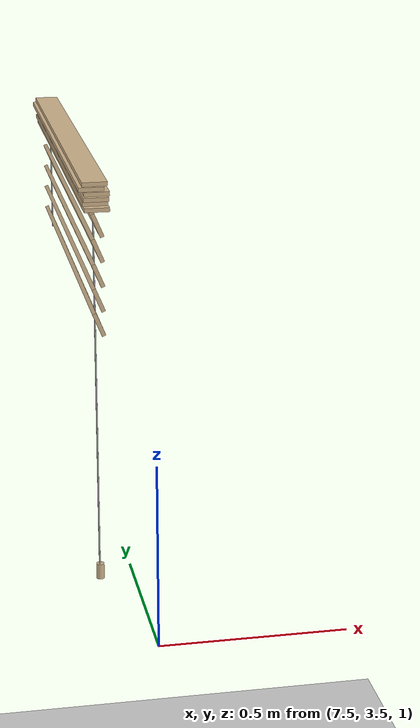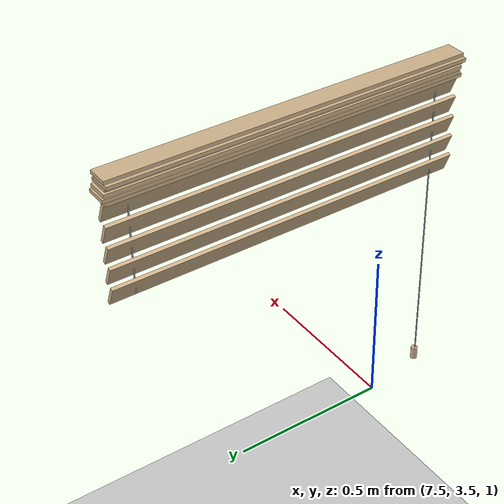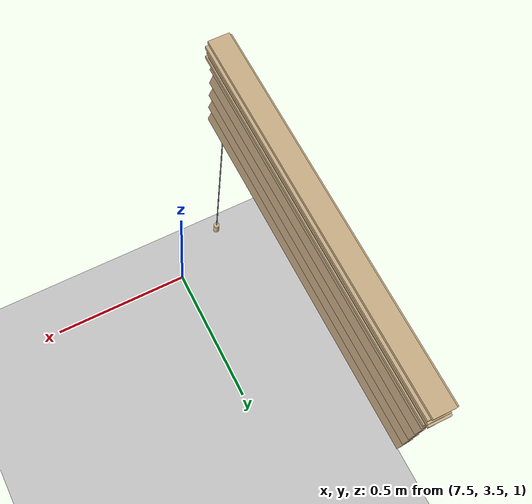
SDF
<sdf version="1.7">
 <world name="default">
  <model name="ground_plane">
   <static>1</static>
   <link name="link">
    <collision name="collision">
     <geometry><plane><normal>0 0 1</normal><size>100 100</size></plane></geometry>
     <surface>
      <contact><collide_bitmask>65535</collide_bitmask></contact>
      <friction><ode><mu>100</mu><mu2>50</mu2></ode></friction>
     </surface>
    </collision>
    <visual name="visual">
     <cast_shadows>0</cast_shadows>
     <geometry><plane><normal>0 0 1</normal><size>100 100</size></plane></geometry>
     <material>
      <script><uri>file://media/materials/scripts/gazebo.material</uri><name>Gazebo/Grey</name></script>
     </material>
    </visual>
   </link>
  </model>
  <model name="my_blinds">
   <link name="link">
    <inertial>
     <mass>1</mass>
     <inertia>
      <ixx>0.166667</ixx>
      <ixy>0</ixy>
      <ixz>0</ixz>
      <iyy>0.166667</iyy>
      <iyz>0</iyz>
      <izz>0.166667</izz>
     </inertia>
    </inertial>
    <pose>0.455071 0.017039 0 0 -0 0</pose>
    <visual name="visual">
     <geometry><box><size>0.01 1.05 0.06</size></box></geometry>
     <material>
      <script><name>Gazebo/Grey</name><uri>file://media/materials/scripts/gazebo.material</uri></script>
      <shader type="pixel"><normal_map>__default__</normal_map></shader>
      <ambient>0.82 0.71 0.55 1</ambient>
      <diffuse>0.82 0.71 0.55 1</diffuse>
      <specular>0.01 0.01 0.01 1</specular>
      <emissive>0 0 0 1</emissive>
     </material>
     <pose>0 0 2.187 3.14159 1.57079 3.14159</pose>
    </visual>
    <collision name="collision">
     <pose>0 0 2.187 3.14159 1.57079 3.14159</pose>
     <geometry><box><size>0.01 1.05 0.06</size></box></geometry>
     <surface>
      <friction>
       <ode><mu>1</mu><mu2>1</mu2><fdir1>0 0 0</fdir1><slip1>0</slip1><slip2>0</slip2></ode>
       <torsional>
        <coefficient>1</coefficient>
        <patch_radius>0</patch_radius>
        <surface_radius>0</surface_radius>
        <use_patch_radius>1</use_patch_radius>
        <ode><slip>0</slip></ode>
       </torsional>
      </friction>
      <bounce><restitution_coefficient>0</restitution_coefficient><threshold>1e+06</threshold></bounce>
      <contact>
       <collide_without_contact>0</collide_without_contact>
       <collide_without_contact_bitmask>1</collide_without_contact_bitmask>
       <collide_bitmask>1</collide_bitmask>
       <ode>
        <soft_cfm>0</soft_cfm>
        <soft_erp>0.2</soft_erp>
        <kp>1e+13</kp>
        <kd>1</kd>
        <max_vel>0.01</max_vel>
        <min_depth>0</min_depth>
       </ode>
       <bullet>
        <split_impulse>1</split_impulse>
        <split_impulse_penetration_threshold>-0.01</split_impulse_penetration_threshold>
        <soft_cfm>0</soft_cfm>
        <soft_erp>0.2</soft_erp>
        <kp>1e+13</kp>
        <kd>1</kd>
       </bullet>
      </contact>
     </surface>
    </collision>
   </link>
   <link name="left_rope">
    <inertial>
     <mass>1</mass>
     <inertia><ixx>0.145833</ixx><ixy>0</ixy><ixz>0</ixz><iyy>0.145833</iyy><iyz>0</iyz><izz>0.125</izz></inertia>
    </inertial>
    <pose>0.452907 0.474129 0.827292 0 -0 0</pose>
    <visual name="visual">
     <pose>0 0 1.24 0 -0 0</pose>
     <geometry><cylinder><radius>0.002</radius><length>0.345</length></cylinder></geometry>
     <material>
      <lighting>1</lighting>
      <script><uri>file://media/materials/scripts/gazebo.material</uri><name>Gazebo/Grey</name></script>
      <shader type="pixel"><normal_map>__default__</normal_map></shader>
      <ambient>1 1 1 1</ambient>
      <diffuse>0.8 0.8 0.8 1</diffuse>
      <specular>0.01 0.01 0.01 1</specular>
      <emissive>0 0 0 1</emissive>
     </material>
    </visual>
    <collision name="collision">
     <pose>0 0 1.24 0 -0 0</pose>
     <geometry><cylinder><radius>0.002</radius><length>0.345</length></cylinder></geometry>
     <surface>
      <friction>
       <ode><mu>1</mu><mu2>1</mu2><fdir1>0 0 0</fdir1><slip1>0</slip1><slip2>0</slip2></ode>
       <torsional>
        <coefficient>1</coefficient>
        <patch_radius>0</patch_radius>
        <surface_radius>0</surface_radius>
        <use_patch_radius>1</use_patch_radius>
        <ode><slip>0</slip></ode>
       </torsional>
      </friction>
      <bounce><restitution_coefficient>0</restitution_coefficient><threshold>1e+06</threshold></bounce>
      <contact>
       <collide_without_contact>0</collide_without_contact>
       <collide_without_contact_bitmask>1</collide_without_contact_bitmask>
       <collide_bitmask>1</collide_bitmask>
       <ode>
        <soft_cfm>0</soft_cfm>
        <soft_erp>0.2</soft_erp>
        <kp>1e+13</kp>
        <kd>1</kd>
        <max_vel>0.01</max_vel>
        <min_depth>0</min_depth>
       </ode>
       <bullet>
        <split_impulse>1</split_impulse>
        <split_impulse_penetration_threshold>-0.01</split_impulse_penetration_threshold>
        <soft_cfm>0</soft_cfm>
        <soft_erp>0.2</soft_erp>
        <kp>1e+13</kp>
        <kd>1</kd>
       </bullet>
      </contact>
     </surface>
    </collision>
   </link>
   <link name="link_1">
    <inertial>
     <mass>1</mass>
     <inertia>
      <ixx>0.166667</ixx>
      <ixy>0</ixy>
      <ixz>0</ixz>
      <iyy>0.166667</iyy>
      <iyz>0</iyz>
      <izz>0.166667</izz>
     </inertia>
    </inertial>
    <pose>0.455071 0.017039 0 0 -0 0</pose>
    <visual name="visual">
     <geometry><box><size>0.01 1.05 0.06</size></box></geometry>
     <material>
      <script><name>Gazebo/Grey</name><uri>file://media/materials/scripts/gazebo.material</uri></script>
      <shader type="pixel"><normal_map>__default__</normal_map></shader>
      <ambient>0.82 0.71 0.55 1</ambient>
      <diffuse>0.82 0.71 0.55 1</diffuse>
      <specular>0.01 0.01 0.01 1</specular>
      <emissive>0 0 0 1</emissive>
     </material>
     <pose>0 0 2.15 0 -0.39 0</pose>
    </visual>
    <collision name="collision">
     <pose>0 0 2.15 0 -0.39 0</pose>
     <geometry><box><size>0.01 1.05 0.06</size></box></geometry>
     <surface>
      <friction>
       <ode><mu>1</mu><mu2>1</mu2><fdir1>0 0 0</fdir1><slip1>0</slip1><slip2>0</slip2></ode>
       <torsional>
        <coefficient>1</coefficient>
        <patch_radius>0</patch_radius>
        <surface_radius>0</surface_radius>
        <use_patch_radius>1</use_patch_radius>
        <ode><slip>0</slip></ode>
       </torsional>
      </friction>
      <bounce><restitution_coefficient>0</restitution_coefficient><threshold>1e+06</threshold></bounce>
      <contact>
       <collide_without_contact>0</collide_without_contact>
       <collide_without_contact_bitmask>1</collide_without_contact_bitmask>
       <collide_bitmask>1</collide_bitmask>
       <ode>
        <soft_cfm>0</soft_cfm>
        <soft_erp>0.2</soft_erp>
        <kp>1e+13</kp>
        <kd>1</kd>
        <max_vel>0.01</max_vel>
        <min_depth>0</min_depth>
       </ode>
       <bullet>
        <split_impulse>1</split_impulse>
        <split_impulse_penetration_threshold>-0.01</split_impulse_penetration_threshold>
        <soft_cfm>0</soft_cfm>
        <soft_erp>0.2</soft_erp>
        <kp>1e+13</kp>
        <kd>1</kd>
       </bullet>
      </contact>
     </surface>
    </collision>
   </link>
   <link name="link_1_0">
    <inertial>
     <mass>1</mass>
     <inertia><ixx>0.145833</ixx><ixy>0</ixy><ixz>0</ixz><iyy>0.145833</iyy><iyz>0</iyz><izz>0.125</izz></inertia>
    </inertial>
    <pose>0.454407 -0.443789 1.24533 0 -0 0</pose>
    <visual name="visual">
     <geometry><cylinder><radius>0.01</radius><length>0.04</length></cylinder></geometry>
     <material>
      <lighting>1</lighting>
      <script><uri>file://media/materials/scripts/gazebo.material</uri><name>Gazebo/Grey</name></script>
      <shader type="pixel"><normal_map>__default__</normal_map></shader>
      <ambient>0.82 0.71 0.55 1</ambient>
      <diffuse>0.82 0.71 0.55 1</diffuse>
      <specular>0.01 0.01 0.01 1</specular>
      <emissive>0 0 0 1</emissive>
     </material>
    </visual>
    <collision name="collision">
     <geometry><cylinder><radius>0.01</radius><length>0.04</length></cylinder></geometry>
     <surface>
      <friction>
       <ode><mu>1</mu><mu2>1</mu2><fdir1>0 0 0</fdir1><slip1>0</slip1><slip2>0</slip2></ode>
       <torsional>
        <coefficient>1</coefficient>
        <patch_radius>0</patch_radius>
        <surface_radius>0</surface_radius>
        <use_patch_radius>1</use_patch_radius>
        <ode><slip>0</slip></ode>
       </torsional>
      </friction>
      <bounce><restitution_coefficient>0</restitution_coefficient><threshold>1e+06</threshold></bounce>
      <contact>
       <collide_without_contact>0</collide_without_contact>
       <collide_without_contact_bitmask>1</collide_without_contact_bitmask>
       <collide_bitmask>1</collide_bitmask>
       <ode>
        <soft_cfm>0</soft_cfm>
        <soft_erp>0.2</soft_erp>
        <kp>1e+13</kp>
        <kd>1</kd>
        <max_vel>0.01</max_vel>
        <min_depth>0</min_depth>
       </ode>
       <bullet>
        <split_impulse>1</split_impulse>
        <split_impulse_penetration_threshold>-0.01</split_impulse_penetration_threshold>
        <soft_cfm>0</soft_cfm>
        <soft_erp>0.2</soft_erp>
        <kp>1e+13</kp>
        <kd>1</kd>
       </bullet>
      </contact>
     </surface>
    </collision>
   </link>
   <link name="link_2">
    <inertial>
     <mass>1</mass>
     <inertia>
      <ixx>0.166667</ixx>
      <ixy>0</ixy>
      <ixz>0</ixz>
      <iyy>0.166667</iyy>
      <iyz>0</iyz>
      <izz>0.166667</izz>
     </inertia>
    </inertial>
    <pose>0.455071 0.017039 0 0 -0 0</pose>
    <visual name="visual">
     <geometry><box><size>0.01 1.05 0.06</size></box></geometry>
     <material>
      <script><name>Gazebo/Grey</name><uri>file://media/materials/scripts/gazebo.material</uri></script>
      <shader type="pixel"><normal_map>__default__</normal_map></shader>
      <ambient>0.82 0.71 0.55 1</ambient>
      <diffuse>0.82 0.71 0.55 1</diffuse>
      <specular>0.01 0.01 0.01 1</specular>
      <emissive>0 0 0 1</emissive>
     </material>
     <pose>0 0 2.09 0 -0.39 0</pose>
    </visual>
    <collision name="collision">
     <pose>0 0 2.09 0 -0.39 0</pose>
     <geometry><box><size>0.01 1.05 0.06</size></box></geometry>
     <surface>
      <friction>
       <ode><mu>1</mu><mu2>1</mu2><fdir1>0 0 0</fdir1><slip1>0</slip1><slip2>0</slip2></ode>
       <torsional>
        <coefficient>1</coefficient>
        <patch_radius>0</patch_radius>
        <surface_radius>0</surface_radius>
        <use_patch_radius>1</use_patch_radius>
        <ode><slip>0</slip></ode>
       </torsional>
      </friction>
      <bounce><restitution_coefficient>0</restitution_coefficient><threshold>1e+06</threshold></bounce>
      <contact>
       <collide_without_contact>0</collide_without_contact>
       <collide_without_contact_bitmask>1</collide_without_contact_bitmask>
       <collide_bitmask>1</collide_bitmask>
       <ode>
        <soft_cfm>0</soft_cfm>
        <soft_erp>0.2</soft_erp>
        <kp>1e+13</kp>
        <kd>1</kd>
        <max_vel>0.01</max_vel>
        <min_depth>0</min_depth>
       </ode>
       <bullet>
        <split_impulse>1</split_impulse>
        <split_impulse_penetration_threshold>-0.01</split_impulse_penetration_threshold>
        <soft_cfm>0</soft_cfm>
        <soft_erp>0.2</soft_erp>
        <kp>1e+13</kp>
        <kd>1</kd>
       </bullet>
      </contact>
     </surface>
    </collision>
   </link>
   <link name="link_3">
    <inertial>
     <mass>1</mass>
     <inertia>
      <ixx>0.166667</ixx>
      <ixy>0</ixy>
      <ixz>0</ixz>
      <iyy>0.166667</iyy>
      <iyz>0</iyz>
      <izz>0.166667</izz>
     </inertia>
    </inertial>
    <pose>0.455071 0.017039 0 0 -0 0</pose>
    <visual name="visual">
     <geometry><box><size>0.01 1.05 0.06</size></box></geometry>
     <material>
      <script><name>Gazebo/Grey</name><uri>file://media/materials/scripts/gazebo.material</uri></script>
      <shader type="pixel"><normal_map>__default__</normal_map></shader>
      <ambient>0.82 0.71 0.55 1</ambient>
      <diffuse>0.82 0.71 0.55 1</diffuse>
      <specular>0.01 0.01 0.01 1</specular>
      <emissive>0 0 0 1</emissive>
     </material>
     <pose>0 0 2.03 0 -0.39 0</pose>
    </visual>
    <collision name="collision">
     <pose>0 0 2.03 0 -0.39 0</pose>
     <geometry><box><size>0.01 1.05 0.06</size></box></geometry>
     <surface>
      <friction>
       <ode><mu>1</mu><mu2>1</mu2><fdir1>0 0 0</fdir1><slip1>0</slip1><slip2>0</slip2></ode>
       <torsional>
        <coefficient>1</coefficient>
        <patch_radius>0</patch_radius>
        <surface_radius>0</surface_radius>
        <use_patch_radius>1</use_patch_radius>
        <ode><slip>0</slip></ode>
       </torsional>
      </friction>
      <bounce><restitution_coefficient>0</restitution_coefficient><threshold>1e+06</threshold></bounce>
      <contact>
       <collide_without_contact>0</collide_without_contact>
       <collide_without_contact_bitmask>1</collide_without_contact_bitmask>
       <collide_bitmask>1</collide_bitmask>
       <ode>
        <soft_cfm>0</soft_cfm>
        <soft_erp>0.2</soft_erp>
        <kp>1e+13</kp>
        <kd>1</kd>
        <max_vel>0.01</max_vel>
        <min_depth>0</min_depth>
       </ode>
       <bullet>
        <split_impulse>1</split_impulse>
        <split_impulse_penetration_threshold>-0.01</split_impulse_penetration_threshold>
        <soft_cfm>0</soft_cfm>
        <soft_erp>0.2</soft_erp>
        <kp>1e+13</kp>
        <kd>1</kd>
       </bullet>
      </contact>
     </surface>
    </collision>
   </link>
   <link name="link_4">
    <inertial>
     <mass>1</mass>
     <inertia>
      <ixx>0.166667</ixx>
      <ixy>0</ixy>
      <ixz>0</ixz>
      <iyy>0.166667</iyy>
      <iyz>0</iyz>
      <izz>0.166667</izz>
     </inertia>
    </inertial>
    <pose>0.455071 0.017039 0 0 -0 0</pose>
    <visual name="visual">
     <geometry><box><size>0.01 1.05 0.06</size></box></geometry>
     <material>
      <script><name>Gazebo/Grey</name><uri>file://media/materials/scripts/gazebo.material</uri></script>
      <shader type="pixel"><normal_map>__default__</normal_map></shader>
      <ambient>0.82 0.71 0.55 1</ambient>
      <diffuse>0.82 0.71 0.55 1</diffuse>
      <specular>0.01 0.01 0.01 1</specular>
      <emissive>0 0 0 1</emissive>
     </material>
     <pose>0 0 1.97 0 -0.39 0</pose>
    </visual>
    <collision name="collision">
     <pose>0 0 1.97 0 -0.39 0</pose>
     <geometry><box><size>0.01 1.05 0.06</size></box></geometry>
     <surface>
      <friction>
       <ode><mu>1</mu><mu2>1</mu2><fdir1>0 0 0</fdir1><slip1>0</slip1><slip2>0</slip2></ode>
       <torsional>
        <coefficient>1</coefficient>
        <patch_radius>0</patch_radius>
        <surface_radius>0</surface_radius>
        <use_patch_radius>1</use_patch_radius>
        <ode><slip>0</slip></ode>
       </torsional>
      </friction>
      <bounce><restitution_coefficient>0</restitution_coefficient><threshold>1e+06</threshold></bounce>
      <contact>
       <collide_without_contact>0</collide_without_contact>
       <collide_without_contact_bitmask>1</collide_without_contact_bitmask>
       <collide_bitmask>1</collide_bitmask>
       <ode>
        <soft_cfm>0</soft_cfm>
        <soft_erp>0.2</soft_erp>
        <kp>1e+13</kp>
        <kd>1</kd>
        <max_vel>0.01</max_vel>
        <min_depth>0</min_depth>
       </ode>
       <bullet>
        <split_impulse>1</split_impulse>
        <split_impulse_penetration_threshold>-0.01</split_impulse_penetration_threshold>
        <soft_cfm>0</soft_cfm>
        <soft_erp>0.2</soft_erp>
        <kp>1e+13</kp>
        <kd>1</kd>
       </bullet>
      </contact>
     </surface>
    </collision>
   </link>
   <link name="link_5">
    <inertial>
     <mass>1</mass>
     <inertia>
      <ixx>0.166667</ixx>
      <ixy>0</ixy>
      <ixz>0</ixz>
      <iyy>0.166667</iyy>
      <iyz>0</iyz>
      <izz>0.166667</izz>
     </inertia>
    </inertial>
    <pose>0.455071 0.017039 0 0 -0 0</pose>
    <visual name="visual">
     <geometry><box><size>0.01 1.05 0.06</size></box></geometry>
     <material>
      <script><name>Gazebo/Grey</name><uri>file://media/materials/scripts/gazebo.material</uri></script>
      <shader type="pixel"><normal_map>__default__</normal_map></shader>
      <ambient>0.82 0.71 0.55 1</ambient>
      <diffuse>0.82 0.71 0.55 1</diffuse>
      <specular>0.01 0.01 0.01 1</specular>
      <emissive>0 0 0 1</emissive>
     </material>
     <pose>0 0 1.91 0 -0.39 0</pose>
    </visual>
    <collision name="collision">
     <pose>0 0 1.91 0 -0.39 0</pose>
     <geometry><box><size>0.01 1.05 0.06</size></box></geometry>
     <surface>
      <friction>
       <ode><mu>1</mu><mu2>1</mu2><fdir1>0 0 0</fdir1><slip1>0</slip1><slip2>0</slip2></ode>
       <torsional>
        <coefficient>1</coefficient>
        <patch_radius>0</patch_radius>
        <surface_radius>0</surface_radius>
        <use_patch_radius>1</use_patch_radius>
        <ode><slip>0</slip></ode>
       </torsional>
      </friction>
      <bounce><restitution_coefficient>0</restitution_coefficient><threshold>1e+06</threshold></bounce>
      <contact>
       <collide_without_contact>0</collide_without_contact>
       <collide_without_contact_bitmask>1</collide_without_contact_bitmask>
       <collide_bitmask>1</collide_bitmask>
       <ode>
        <soft_cfm>0</soft_cfm>
        <soft_erp>0.2</soft_erp>
        <kp>1e+13</kp>
        <kd>1</kd>
        <max_vel>0.01</max_vel>
        <min_depth>0</min_depth>
       </ode>
       <bullet>
        <split_impulse>1</split_impulse>
        <split_impulse_penetration_threshold>-0.01</split_impulse_penetration_threshold>
        <soft_cfm>0</soft_cfm>
        <soft_erp>0.2</soft_erp>
        <kp>1e+13</kp>
        <kd>1</kd>
       </bullet>
      </contact>
     </surface>
    </collision>
   </link>
   <link name="link_clone">
    <inertial>
     <mass>1</mass>
     <inertia>
      <ixx>0.166667</ixx>
      <ixy>0</ixy>
      <ixz>0</ixz>
      <iyy>0.166667</iyy>
      <iyz>0</iyz>
      <izz>0.166667</izz>
     </inertia>
    </inertial>
    <pose>0.452148 0.026043 0.012868 0 -0 0</pose>
    <visual name="visual">
     <geometry><box><size>0.01 1.05 0.06</size></box></geometry>
     <material>
      <script><name>Gazebo/Grey</name><uri>file://media/materials/scripts/gazebo.material</uri></script>
      <shader type="pixel"><normal_map>__default__</normal_map></shader>
      <ambient>0.82 0.71 0.55 1</ambient>
      <diffuse>0.82 0.71 0.55 1</diffuse>
      <specular>0.01 0.01 0.01 1</specular>
      <emissive>0 0 0 1</emissive>
     </material>
     <pose>0 0 2.187 3.14159 1.57079 3.14159</pose>
    </visual>
    <collision name="collision">
     <pose>0 0 2.187 3.14159 1.57079 3.14159</pose>
     <geometry><box><size>0.01 1.05 0.06</size></box></geometry>
     <surface>
      <friction>
       <ode><mu>1</mu><mu2>1</mu2><fdir1>0 0 0</fdir1><slip1>0</slip1><slip2>0</slip2></ode>
       <torsional>
        <coefficient>1</coefficient>
        <patch_radius>0</patch_radius>
        <surface_radius>0</surface_radius>
        <use_patch_radius>1</use_patch_radius>
        <ode><slip>0</slip></ode>
       </torsional>
      </friction>
      <bounce><restitution_coefficient>0</restitution_coefficient><threshold>1e+06</threshold></bounce>
      <contact>
       <collide_without_contact>0</collide_without_contact>
       <collide_without_contact_bitmask>1</collide_without_contact_bitmask>
       <collide_bitmask>1</collide_bitmask>
       <ode>
        <soft_cfm>0</soft_cfm>
        <soft_erp>0.2</soft_erp>
        <kp>1e+13</kp>
        <kd>1</kd>
        <max_vel>0.01</max_vel>
        <min_depth>0</min_depth>
       </ode>
       <bullet>
        <split_impulse>1</split_impulse>
        <split_impulse_penetration_threshold>-0.01</split_impulse_penetration_threshold>
        <soft_cfm>0</soft_cfm>
        <soft_erp>0.2</soft_erp>
        <kp>1e+13</kp>
        <kd>1</kd>
       </bullet>
      </contact>
     </surface>
    </collision>
   </link>
   <link name="link_clone_clone">
    <inertial>
     <mass>1</mass>
     <inertia>
      <ixx>0.166667</ixx>
      <ixy>0</ixy>
      <ixz>0</ixz>
      <iyy>0.166667</iyy>
      <iyz>0</iyz>
      <izz>0.166667</izz>
     </inertia>
    </inertial>
    <pose>0.454154 0.020509 0.023586 0 -0 0</pose>
    <visual name="visual">
     <geometry><box><size>0.01 1.05 0.06</size></box></geometry>
     <material>
      <script><name>Gazebo/Grey</name><uri>file://media/materials/scripts/gazebo.material</uri></script>
      <shader type="pixel"><normal_map>__default__</normal_map></shader>
      <ambient>0.82 0.71 0.55 1</ambient>
      <diffuse>0.82 0.71 0.55 1</diffuse>
      <specular>0.01 0.01 0.01 1</specular>
      <emissive>0 0 0 1</emissive>
     </material>
     <pose>0 0 2.187 3.14159 1.57079 3.14159</pose>
    </visual>
    <collision name="collision">
     <pose>0 0 2.187 3.14159 1.57079 3.14159</pose>
     <geometry><box><size>0.01 1.05 0.06</size></box></geometry>
     <surface>
      <friction>
       <ode><mu>1</mu><mu2>1</mu2><fdir1>0 0 0</fdir1><slip1>0</slip1><slip2>0</slip2></ode>
       <torsional>
        <coefficient>1</coefficient>
        <patch_radius>0</patch_radius>
        <surface_radius>0</surface_radius>
        <use_patch_radius>1</use_patch_radius>
        <ode><slip>0</slip></ode>
       </torsional>
      </friction>
      <bounce><restitution_coefficient>0</restitution_coefficient><threshold>1e+06</threshold></bounce>
      <contact>
       <collide_without_contact>0</collide_without_contact>
       <collide_without_contact_bitmask>1</collide_without_contact_bitmask>
       <collide_bitmask>1</collide_bitmask>
       <ode>
        <soft_cfm>0</soft_cfm>
        <soft_erp>0.2</soft_erp>
        <kp>1e+13</kp>
        <kd>1</kd>
        <max_vel>0.01</max_vel>
        <min_depth>0</min_depth>
       </ode>
       <bullet>
        <split_impulse>1</split_impulse>
        <split_impulse_penetration_threshold>-0.01</split_impulse_penetration_threshold>
        <soft_cfm>0</soft_cfm>
        <soft_erp>0.2</soft_erp>
        <kp>1e+13</kp>
        <kd>1</kd>
       </bullet>
      </contact>
     </surface>
    </collision>
   </link>
   <link name="link_clone_clone_clone">
    <inertial>
     <mass>1</mass>
     <inertia>
      <ixx>0.166667</ixx>
      <ixy>0</ixy>
      <ixz>0</ixz>
      <iyy>0.166667</iyy>
      <iyz>0</iyz>
      <izz>0.166667</izz>
     </inertia>
    </inertial>
    <pose>0.455421 0.015468 0.038005 0 -0 0</pose>
    <visual name="visual">
     <geometry><box><size>0.01 1.05 0.06</size></box></geometry>
     <material>
      <script><name>Gazebo/Grey</name><uri>file://media/materials/scripts/gazebo.material</uri></script>
      <shader type="pixel"><normal_map>__default__</normal_map></shader>
      <ambient>0.82 0.71 0.55 1</ambient>
      <diffuse>0.82 0.71 0.55 1</diffuse>
      <specular>0.01 0.01 0.01 1</specular>
      <emissive>0 0 0 1</emissive>
     </material>
     <pose>0 0 2.187 3.14159 1.57079 3.14159</pose>
    </visual>
    <collision name="collision">
     <pose>0 0 2.187 3.14159 1.57079 3.14159</pose>
     <geometry><box><size>0.01 1.05 0.06</size></box></geometry>
     <surface>
      <friction>
       <ode><mu>1</mu><mu2>1</mu2><fdir1>0 0 0</fdir1><slip1>0</slip1><slip2>0</slip2></ode>
       <torsional>
        <coefficient>1</coefficient>
        <patch_radius>0</patch_radius>
        <surface_radius>0</surface_radius>
        <use_patch_radius>1</use_patch_radius>
        <ode><slip>0</slip></ode>
       </torsional>
      </friction>
      <bounce><restitution_coefficient>0</restitution_coefficient><threshold>1e+06</threshold></bounce>
      <contact>
       <collide_without_contact>0</collide_without_contact>
       <collide_without_contact_bitmask>1</collide_without_contact_bitmask>
       <collide_bitmask>1</collide_bitmask>
       <ode>
        <soft_cfm>0</soft_cfm>
        <soft_erp>0.2</soft_erp>
        <kp>1e+13</kp>
        <kd>1</kd>
        <max_vel>0.01</max_vel>
        <min_depth>0</min_depth>
       </ode>
       <bullet>
        <split_impulse>1</split_impulse>
        <split_impulse_penetration_threshold>-0.01</split_impulse_penetration_threshold>
        <soft_cfm>0</soft_cfm>
        <soft_erp>0.2</soft_erp>
        <kp>1e+13</kp>
        <kd>1</kd>
       </bullet>
      </contact>
     </surface>
    </collision>
   </link>
   <link name="link_clone_clone_clone_clone">
    <inertial>
     <mass>1</mass>
     <inertia>
      <ixx>0.166667</ixx>
      <ixy>0</ixy>
      <ixz>0</ixz>
      <iyy>0.166667</iyy>
      <iyz>0</iyz>
      <izz>0.166667</izz>
     </inertia>
    </inertial>
    <pose>0.442992 0.017715 0.049194 0 -0 0</pose>
    <visual name="visual">
     <geometry><box><size>0.01 1.05 0.06</size></box></geometry>
     <material>
      <script><name>Gazebo/Grey</name><uri>file://media/materials/scripts/gazebo.material</uri></script>
      <shader type="pixel"><normal_map>__default__</normal_map></shader>
      <ambient>0.82 0.71 0.55 1</ambient>
      <diffuse>0.82 0.71 0.55 1</diffuse>
      <specular>0.01 0.01 0.01 1</specular>
      <emissive>0 0 0 1</emissive>
     </material>
     <pose>0 0 2.187 3.14159 1.57079 3.14159</pose>
    </visual>
    <collision name="collision">
     <pose>0 0 2.187 3.14159 1.57079 3.14159</pose>
     <geometry><box><size>0.01 1.05 0.06</size></box></geometry>
     <surface>
      <friction>
       <ode><mu>1</mu><mu2>1</mu2><fdir1>0 0 0</fdir1><slip1>0</slip1><slip2>0</slip2></ode>
       <torsional>
        <coefficient>1</coefficient>
        <patch_radius>0</patch_radius>
        <surface_radius>0</surface_radius>
        <use_patch_radius>1</use_patch_radius>
        <ode><slip>0</slip></ode>
       </torsional>
      </friction>
      <bounce><restitution_coefficient>0</restitution_coefficient><threshold>1e+06</threshold></bounce>
      <contact>
       <collide_without_contact>0</collide_without_contact>
       <collide_without_contact_bitmask>1</collide_without_contact_bitmask>
       <collide_bitmask>1</collide_bitmask>
       <ode>
        <soft_cfm>0</soft_cfm>
        <soft_erp>0.2</soft_erp>
        <kp>1e+13</kp>
        <kd>1</kd>
        <max_vel>0.01</max_vel>
        <min_depth>0</min_depth>
       </ode>
       <bullet>
        <split_impulse>1</split_impulse>
        <split_impulse_penetration_threshold>-0.01</split_impulse_penetration_threshold>
        <soft_cfm>0</soft_cfm>
        <soft_erp>0.2</soft_erp>
        <kp>1e+13</kp>
        <kd>1</kd>
       </bullet>
      </contact>
     </surface>
    </collision>
   </link>
   <link name="link_clone_clone_clone_clone_clone">
    <inertial>
     <mass>1</mass>
     <inertia>
      <ixx>0.166667</ixx>
      <ixy>0</ixy>
      <ixz>0</ixz>
      <iyy>0.166667</iyy>
      <iyz>0</iyz>
      <izz>0.166667</izz>
     </inertia>
    </inertial>
    <pose>0.451065 0.019395 0.060777 0 -0 0</pose>
    <visual name="visual">
     <geometry><box><size>0.01 1.05 0.06</size></box></geometry>
     <material>
      <script><name>Gazebo/Grey</name><uri>file://media/materials/scripts/gazebo.material</uri></script>
      <shader type="pixel"><normal_map>__default__</normal_map></shader>
      <ambient>0.82 0.71 0.55 1</ambient>
      <diffuse>0.82 0.71 0.55 1</diffuse>
      <specular>0.01 0.01 0.01 1</specular>
      <emissive>0 0 0 1</emissive>
     </material>
     <pose>0 0 2.187 3.14159 1.57079 3.14159</pose>
    </visual>
    <collision name="collision">
     <pose>0 0 2.187 3.14159 1.57079 3.14159</pose>
     <geometry><box><size>0.01 1.05 0.06</size></box></geometry>
     <surface>
      <friction>
       <ode><mu>1</mu><mu2>1</mu2><fdir1>0 0 0</fdir1><slip1>0</slip1><slip2>0</slip2></ode>
       <torsional>
        <coefficient>1</coefficient>
        <patch_radius>0</patch_radius>
        <surface_radius>0</surface_radius>
        <use_patch_radius>1</use_patch_radius>
        <ode><slip>0</slip></ode>
       </torsional>
      </friction>
      <bounce><restitution_coefficient>0</restitution_coefficient><threshold>1e+06</threshold></bounce>
      <contact>
       <collide_without_contact>0</collide_without_contact>
       <collide_without_contact_bitmask>1</collide_without_contact_bitmask>
       <collide_bitmask>1</collide_bitmask>
       <ode>
        <soft_cfm>0</soft_cfm>
        <soft_erp>0.2</soft_erp>
        <kp>1e+13</kp>
        <kd>1</kd>
        <max_vel>0.01</max_vel>
        <min_depth>0</min_depth>
       </ode>
       <bullet>
        <split_impulse>1</split_impulse>
        <split_impulse_penetration_threshold>-0.01</split_impulse_penetration_threshold>
        <soft_cfm>0</soft_cfm>
        <soft_erp>0.2</soft_erp>
        <kp>1e+13</kp>
        <kd>1</kd>
       </bullet>
      </contact>
     </surface>
    </collision>
   </link>
   <link name="right_rope">
    <inertial>
     <mass>1</mass>
     <inertia><ixx>0.145833</ixx><ixy>0</ixy><ixz>0</ixz><iyy>0.145833</iyy><iyz>0</iyz><izz>0.125</izz></inertia>
    </inertial>
    <pose>0.452907 -0.445289 0.5 0 -0 0</pose>
    <visual name="visual">
     <pose>0 0 1.24 0 -0 0</pose>
     <geometry><cylinder><radius>0.002</radius><length>1</length></cylinder></geometry>
     <material>
      <lighting>1</lighting>
      <script><uri>file://media/materials/scripts/gazebo.material</uri><name>Gazebo/Grey</name></script>
      <shader type="pixel"><normal_map>__default__</normal_map></shader>
      <ambient>1 1 1 1</ambient>
      <diffuse>0.8 0.8 0.8 1</diffuse>
      <specular>0.01 0.01 0.01 1</specular>
      <emissive>0 0 0 1</emissive>
     </material>
    </visual>
    <collision name="collision">
     <pose>0 0 1.24 0 -0 0</pose>
     <geometry><cylinder><radius>0.002</radius><length>1</length></cylinder></geometry>
     <surface>
      <friction>
       <ode><mu>1</mu><mu2>1</mu2><fdir1>0 0 0</fdir1><slip1>0</slip1><slip2>0</slip2></ode>
       <torsional>
        <coefficient>1</coefficient>
        <patch_radius>0</patch_radius>
        <surface_radius>0</surface_radius>
        <use_patch_radius>1</use_patch_radius>
        <ode><slip>0</slip></ode>
       </torsional>
      </friction>
      <bounce><restitution_coefficient>0</restitution_coefficient><threshold>1e+06</threshold></bounce>
      <contact>
       <collide_without_contact>0</collide_without_contact>
       <collide_without_contact_bitmask>1</collide_without_contact_bitmask>
       <collide_bitmask>1</collide_bitmask>
       <ode>
        <soft_cfm>0</soft_cfm>
        <soft_erp>0.2</soft_erp>
        <kp>1e+13</kp>
        <kd>1</kd>
        <max_vel>0.01</max_vel>
        <min_depth>0</min_depth>
       </ode>
       <bullet>
        <split_impulse>1</split_impulse>
        <split_impulse_penetration_threshold>-0.01</split_impulse_penetration_threshold>
        <soft_cfm>0</soft_cfm>
        <soft_erp>0.2</soft_erp>
        <kp>1e+13</kp>
        <kd>1</kd>
       </bullet>
      </contact>
     </surface>
    </collision>
   </link>
   <static>1</static>
   <pose>6.89487 3.9118 0 0 -0 0</pose>
  </model>
 </world>
</sdf>
